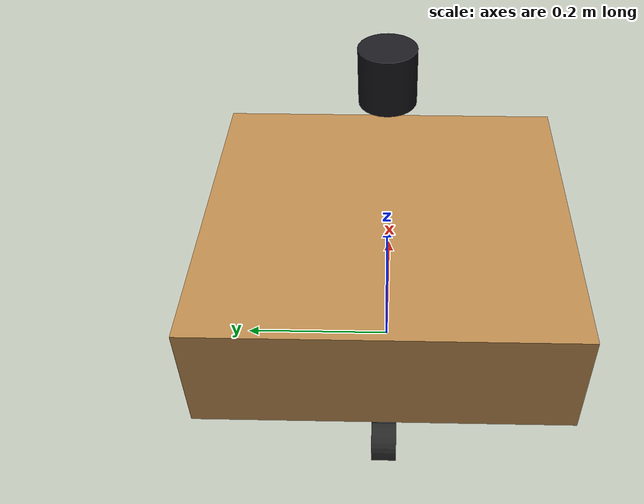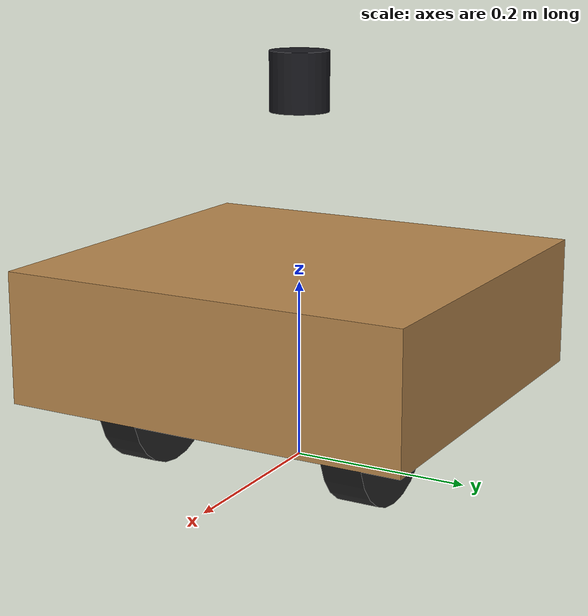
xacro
<?xml version="1.0"?>
<robot xmlns:xacro="http://www.ros.org/wiki/xacro" name="robo2">

  <xacro:arg name="sim" default="false"/>
  <xacro:arg name="controllers_yaml" default=""/>

  <!-- ==================== NÚMEROS AJUSTÁVEIS ==================== -->

  <!-- Caixa de madeira. Fundo a `altura_solo` do chão: quem toca o chão são as
       rodas, nunca a caixa. -->
  <!-- MEDIDO 2026-07-29: 433 × 455 × 145 mm, fundo a 85,2 mm do chão.
       Confere com a altura total medida (85,2 + 145 = 230,2 mm contra 233,5
       medidos do chão ao topo; 3,3 mm de tampa/folga). -->
  <xacro:property name="caixa_x"     value="0.433"/>
  <xacro:property name="caixa_y"     value="0.455"/>
  <xacro:property name="caixa_z"     value="0.145"/>
  <xacro:property name="altura_solo" value="0.0852"/>

  <!-- Rodas motrizes (hoverboard). A separação é o valor que o
       diff_drive_controller usa para converter cmd_vel em rad/s de roda —
       errar aqui erra TODO comando de giro. -->
  <xacro:property name="roda_raio"      value="0.080"/>
  <xacro:property name="roda_largura"   value="0.045"/>
  <xacro:property name="roda_separacao" value="0.270"/>
  <xacro:property name="roda_x"         value="0.0815"/>

  <xacro:property name="boba_raio"  value="0.025"/>
  <xacro:property name="boba_x"     value="-0.19"/>
  <xacro:property name="boba_trail" value="0.01"/>

  <!-- Massas (total ~10 kg — o robô é leve).
       A inércia de guinada que sai daqui é o que produz o sobrepasso: um robô
       sem inércia corrige rumo instantaneamente e nunca faz S. -->
  <xacro:property name="massa_chassi" value="5.8"/>
  <xacro:property name="massa_roda"   value="2.0"/>
  <xacro:property name="massa_garfo"  value="0.1"/>
  <xacro:property name="massa_boba"   value="0.1"/>

  <xacro:property name="boba_pivo_atrito"    value="0.05"/>
  <xacro:property name="boba_pivo_damping"   value="0.02"/>

  <xacro:property name="livox_z_solo" value="0.42"/>
  <xacro:property name="livox_x"      value="0.0"/>

  <!-- ==================== DERIVADOS (não editar) ==================== -->
  <xacro:property name="caixa_cz"  value="${altura_solo + caixa_z/2}"/>
  <xacro:property name="boba_pivo_z" value="${altura_solo}"/>
  <!-- Medido do chão, e `base_link` está no chão: entra direto. -->
  <xacro:property name="livox_z"   value="${livox_z_solo}"/>

  <xacro:macro name="inercia_caixa" params="m x y z ox:=0 oy:=0 oz:=0">
    <inertial>
      <origin xyz="${ox} ${oy} ${oz}"/>
      <mass value="${m}"/>
      <inertia ixx="${m*(y*y+z*z)/12}" iyy="${m*(x*x+z*z)/12}" izz="${m*(x*x+y*y)/12}"
               ixy="0" ixz="0" iyz="0"/>
    </inertial>
  </xacro:macro>

  <!-- Inércia de cilindro girando em torno de Y (eixo da roda) -->
  <xacro:macro name="inercia_roda" params="m r h">
    <inertial>
      <mass value="${m}"/>
      <inertia ixx="${m*(3*r*r+h*h)/12}" iyy="${m*r*r/2}" izz="${m*(3*r*r+h*h)/12}"
               ixy="0" ixz="0" iyz="0"/>
    </inertial>
  </xacro:macro>

  <!-- ==================== CHASSI ==================== -->

  <link name="base_link">
    <visual>
      <origin xyz="0 0 ${caixa_cz}"/>
      <geometry><box size="${caixa_x} ${caixa_y} ${caixa_z}"/></geometry>
      <material name="madeira"><color rgba="0.72 0.53 0.30 1"/></material>
    </visual>
    <collision>
      <origin xyz="0 0 ${caixa_cz}"/>
      <geometry><box size="${caixa_x} ${caixa_y} ${caixa_z}"/></geometry>
    </collision>
    <xacro:inercia_caixa m="${massa_chassi}" x="${caixa_x}" y="${caixa_y}" z="${caixa_z}"
                         oz="${caixa_cz}"/>
  </link>

  <!-- ==================== RODAS MOTRIZES ==================== -->

  <xacro:macro name="roda_motriz" params="lado reflect">
    <link name="${lado}_wheel">
      <visual>
        <origin rpy="${pi/2} 0 0"/>
        <geometry><cylinder radius="${roda_raio}" length="${roda_largura}"/></geometry>
        <material name="borracha"><color rgba="0.15 0.15 0.15 1"/></material>
      </visual>
      <collision>
        <origin rpy="${pi/2} 0 0"/>
        <geometry><cylinder radius="${roda_raio}" length="${roda_largura}"/></geometry>
      </collision>
      <xacro:inercia_roda m="${massa_roda}" r="${roda_raio}" h="${roda_largura}"/>
    </link>

    <joint name="${lado}_wheel_joint" type="continuous">
      <parent link="base_link"/>
      <child link="${lado}_wheel"/>
      <origin xyz="${roda_x} ${reflect*roda_separacao/2} ${roda_raio}"/>
      <axis xyz="0 1 0"/>
    </joint>
  </xacro:macro>

  <xacro:roda_motriz lado="left"  reflect="1"/>
  <xacro:roda_motriz lado="right" reflect="-1"/>

  <!-- ==================== RODA BOBA ==================== -->

  <link name="caster_fork">
    <visual>
      <origin xyz="${-boba_trail/2} 0 ${-boba_raio/2}"/>
      <geometry><box size="${boba_trail} 0.03 ${boba_raio}"/></geometry>
      <material name="metal"><color rgba="0.5 0.5 0.55 1"/></material>
    </visual>
    <xacro:inercia_caixa m="${massa_garfo}" x="${boba_trail}" y="0.03" z="${boba_raio}"
                         ox="${-boba_trail/2}" oz="${-boba_raio/2}"/>
  </link>

  <joint name="caster_swivel_joint" type="continuous">
    <parent link="base_link"/>
    <child link="caster_fork"/>
    <origin xyz="${boba_x} 0 ${boba_pivo_z}"/>
    <axis xyz="0 0 1"/>
    <dynamics damping="${boba_pivo_damping}" friction="${boba_pivo_atrito}"/>
  </joint>

  <link name="caster_wheel">
    <visual>
      <origin rpy="${pi/2} 0 0"/>
      <geometry><cylinder radius="${boba_raio}" length="0.03"/></geometry>
      <material name="borracha"><color rgba="0.15 0.15 0.15 1"/></material>
    </visual>
    <collision>
      <origin rpy="${pi/2} 0 0"/>
      <geometry><cylinder radius="${boba_raio}" length="0.03"/></geometry>
    </collision>
    <xacro:inercia_roda m="${massa_boba}" r="${boba_raio}" h="0.03"/>
  </link>

  <joint name="caster_wheel_joint" type="continuous">
    <parent link="caster_fork"/>
    <child link="caster_wheel"/>
    <origin xyz="${-boba_trail} 0 ${-(boba_pivo_z - boba_raio)}"/>
    <axis xyz="0 1 0"/>
  </joint>

  <!-- ==================== Livox Mid-360 (decisão 012) ==================== -->
  <link name="livox_frame">
    <visual>
      <geometry><cylinder radius="0.0325" length="0.065"/></geometry>
      <material name="livox_preto"><color rgba="0.10 0.10 0.12 1"/></material>
    </visual>
    <xacro:inercia_roda m="0.265" r="0.0325" h="0.065"/>
  </link>

  <joint name="livox_joint" type="fixed">
    <parent link="base_link"/>
    <child link="livox_frame"/>
    <origin xyz="${livox_x} 0 ${livox_z}"/>
  </joint>

  <!-- ==================== ros2_control ==================== -->
  <!-- Mesmas juntas nos dois casos; só a camada de hardware muda. -->

  <xacro:if value="$(arg sim)">
    <ros2_control name="GazeboSimSystem" type="system">
      <hardware>
        <plugin>gz_ros2_control/GazeboSimSystem</plugin>
      </hardware>
      <joint name="left_wheel_joint">
        <command_interface name="velocity"/>
        <state_interface name="position"/>
        <state_interface name="velocity"/>
      </joint>
      <joint name="right_wheel_joint">
        <command_interface name="velocity"/>
        <state_interface name="position"/>
        <state_interface name="velocity"/>
      </joint>
    </ros2_control>
  </xacro:if>

  <xacro:unless value="$(arg sim)">
    <ros2_control name="HoverboardSystem" type="system">
      <hardware>
        <plugin>hoverboard_driver/hoverboard_driver</plugin>
        <param name="wheel_radius">${roda_raio}</param>
        <param name="max_velocity">1.0</param>
        <param name="device">/dev/ttyUSB0</param>

        <param name="feedback_sign_left">1.0</param>
        <param name="feedback_sign_right">-1.0</param>

        <param name="deadband_enable">true</param>
        <param name="deadband_speed">100.0</param>
      </hardware>
      <joint name="left_wheel_joint">
        <command_interface name="velocity"/>
        <state_interface name="position"/>
        <state_interface name="velocity"/>
      </joint>
      <joint name="right_wheel_joint">
        <command_interface name="velocity"/>
        <state_interface name="position"/>
        <state_interface name="velocity"/>
      </joint>
    </ros2_control>
  </xacro:unless>

  <xacro:if value="$(arg sim)">
    <xacro:include filename="$(find robot_base)/description/robo2.gazebo.xacro"/>
  </xacro:if>

</robot>
